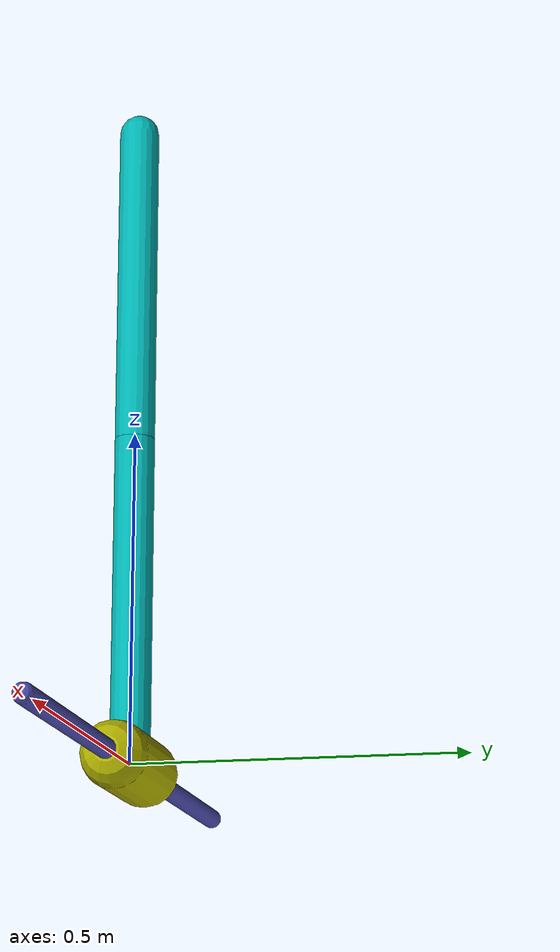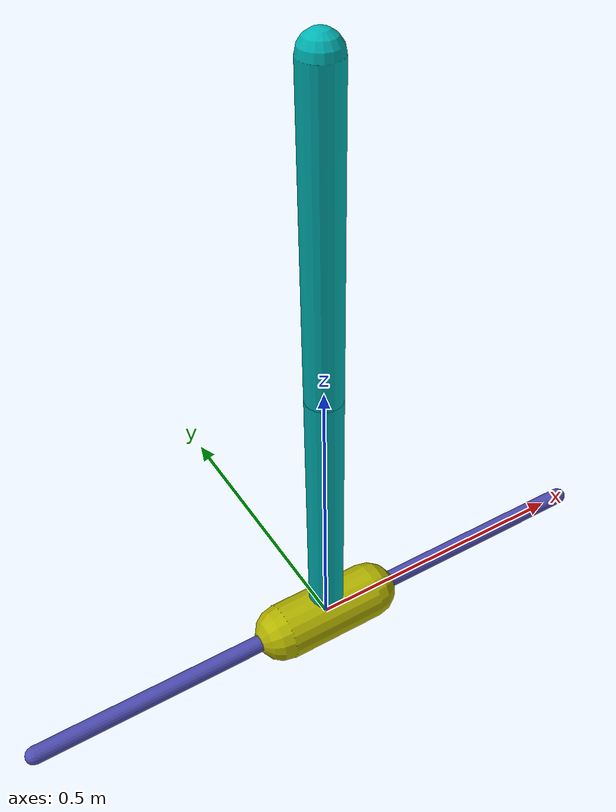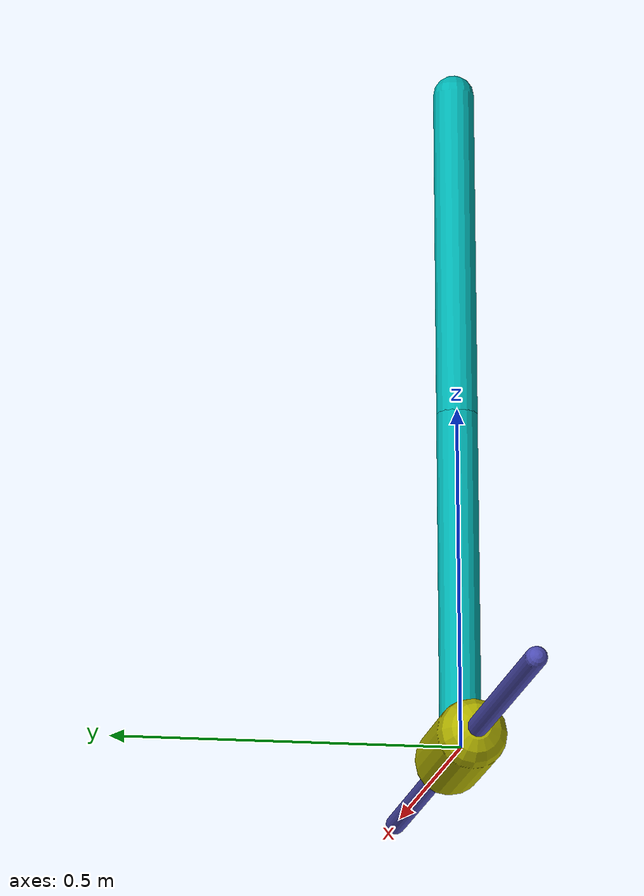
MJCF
<mujoco model="cartpole">
    <!-- Compile and physics options -->
    <compiler coordinate="local" inertiafromgeom="true" />
    <option gravity="1e-5 0 -9.81" integrator="RK4" timestep="0.01" />
    <size nstack="3000" />

    <!-- Optional: global visualization settings -->
    <visual>
        <!-- map: controls the near/far clip planes, plus optional fog -->
        <!-- quality: control shadow map resolution, etc. -->
        <quality shadowsize="2048" />
        <!-- headlight: the default light attached to the camera -->
        <headlight ambient="0.3 0.3 0.3" diffuse="0.7 0.7 0.7" specular="0.1 0.1 0.1" />
    </visual>

    <asset>
        <texture type="skybox" builtin="flat" rgb1="0 1 0" width="32"
            height="512" />
    </asset>

    <custom>
        <numeric data="2" name="frame_skip" />
    </custom>

    <default>
        <joint damping="0.05" />
        <geom contype="0" friction="1 0.1 0.1" rgba="0.7 0.7 0 1" />
    </default>

    <worldbody>

        <geom name="rail" pos="0 0 0" quat="0.707 0 0.707 0" rgba="0.3 0.3 0.7 1"
            size="0.015 0.5381625"
            type="capsule" />

        <!-- True range:  range="-0.5381625 0.5381625"-->
        <!-- 52.24 Is the motor damping -->
        <!-- 0.13 is the slide damping -->
        <body name="cart" pos="0 0 0">
            <joint axis="1 0 0" limited="true" margin="0.01" name="slider" pos="0 0 0"
                range="-0.5381625 0.5381625"
                type="slide" damping="0.13" frictionloss="1" />
            <geom name="cart" pos="0 0 0" quat="0.707 0 0.707 0" size="0.05 0.0875" type="capsule"
                mass="0.6" />

            <body name="pole" pos="0 0 0">
                <joint axis="0 1 0" name="hinge" pos="0 0 0" type="hinge" damping="0.008" />
                <geom fromto="0 0 0 0 0 0.492125" name="cpole" rgba="0 0.7 0.7 1"
                    size="0.03 0.2460625"
                    type="capsule" mass="0.085" />

                <site name="pole_tip" pos="0 0 0.492125" size="0.01 0.01" rgba="1 0 0 1" />
                <body name="pole2" pos="0 0 0.492125">
                    <joint axis="0 1 0" name="hinge2" pos="0 0 0" type="hinge" damping="0.008" />
                    <geom fromto="0 0 0 0 0 0.492125" name="cpole2" rgba="0 0.7 0.7 1"
                        size="0.03 0.2460625"
                        type="capsule" mass="0.085" />

                    <site name="pole2_tip" pos="0 0 0.492125" size="0.01 0.01" />
                </body>
            </body>
        </body>
    </worldbody>

    <actuator>
        <motor ctrllimited="true" ctrlrange="-1 1" gear="45.71428571428572" joint="slider" name="slide" />
    </actuator>

</mujoco>
